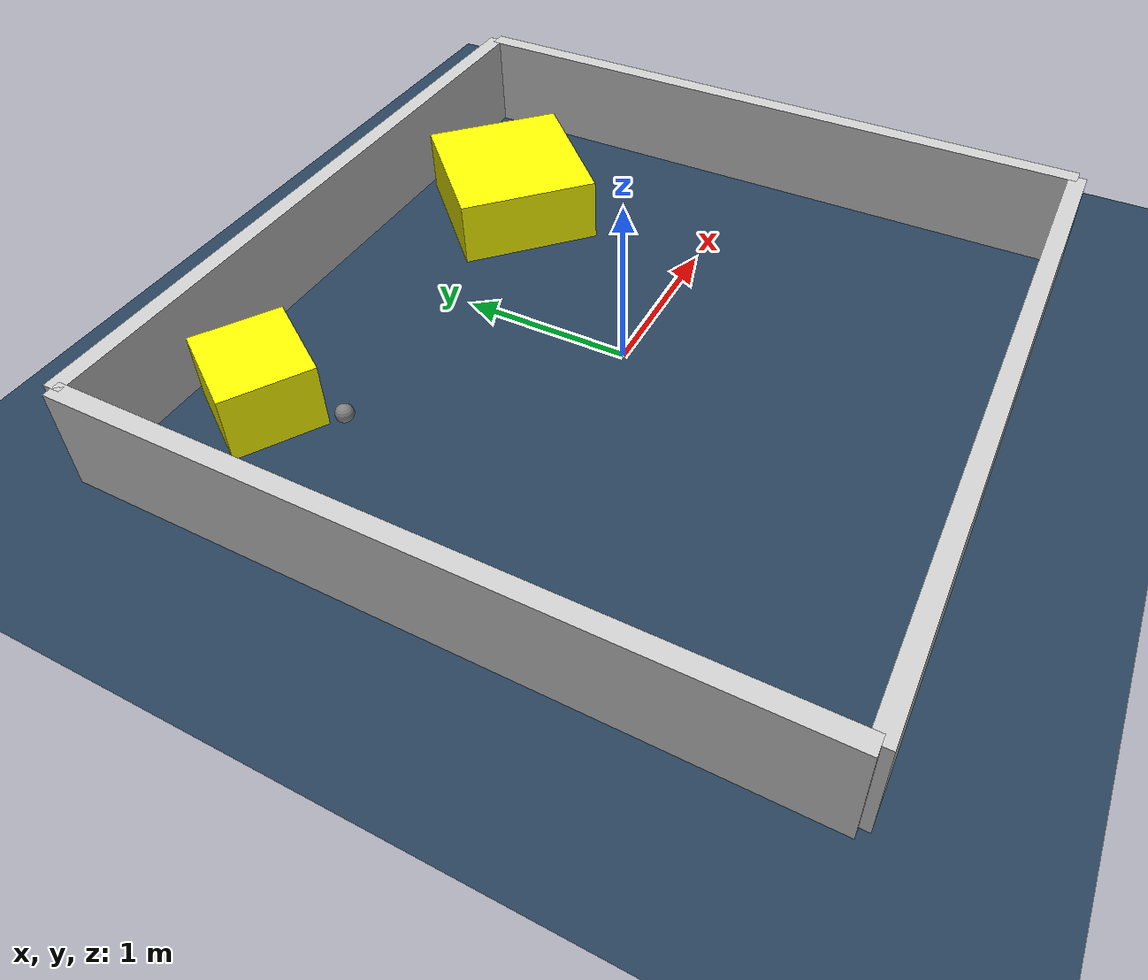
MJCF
<?xml version="1.0" ?>
<mujoco model="generated_environment">
  <option timestep="0.01" integrator="RK4" cone="elliptic"/>
  <default>
    <geom density="1"/>
  </default>
  <asset>
    <texture builtin="gradient" height="3072" rgb1="0.3 0.5 0.7" rgb2="0 0 0" type="skybox" width="512"/>
    <texture builtin="checker" height="300" mark="edge" markrgb="0.8 0.8 0.8" name="groundplane" rgb1="0.2 0.3 0.4" rgb2="0.1 0.2 0.3" type="2d" width="300"/>
    <material name="groundplane" reflectance="0.2" texrepeat="5 5" texture="groundplane" texuniform="true"/>
    <material name="robot" rgba="0.0 1.0 0.0 1"/>
  </asset>
  <worldbody>
    <light dir="0 0 -1" directional="true" pos="0 0 1.5"/>
    <geom condim="4" friction="1.0 0.005 0.001" material="groundplane" name="floor" size="0 0 0.05" type="plane"/>
    <body name="walls">
      <geom name="wall_1" condim="4" pos="-2.0 0.0 0.3" rgba="0.800000011920929 0.800000011920929 0.800000011920929 1.0" size="0.05 2.0 0.3" type="box"/>
      <geom name="wall_2" condim="4" pos="2.0 0.0 0.3" rgba="0.800000011920929 0.800000011920929 0.800000011920929 1.0" size="0.05 2.0 0.3" type="box"/>
      <geom name="wall_3" condim="4" pos="0.0 -2.0 0.3" rgba="0.800000011920929 0.800000011920929 0.800000011920929 1.0" size="2.0 0.05 0.3" type="box"/>
      <geom name="wall_4" condim="4" pos="0.0 2.0 0.3" rgba="0.800000011920929 0.800000011920929 0.800000011920929 1.0" size="2.0 0.05 0.3" type="box"/>
    </body>
    <body name="robot">
      <joint name="joint_x" type="slide" pos="0 0 0" axis="1 0 0"/>
      <joint name="joint_y" type="slide" pos="0 0 0" axis="0 1 0"/>
      <geom name="robot" type="sphere" pos="-1.2211630306257368 0.9713859449983162 0.2" size="0.05" mass="5." friction="1.0 0.005 0.0001" condim="4"/>
      <site name="sensor_ball"/>
    </body>
    <body name="obstacle_1_movable">
      <geom name="obstacle_1_movable" condim="4" pos="0.9510695436773067 1.2820353812274952 0.2" euler="0 0 315.7224667083405" friction="1.0 0.005 0.001" rgba="1 1 0 1" size="0.42161187767174013 0.4509935103994927 0.2" type="box" mass="0.1"/>
      <joint type="free"/>
    </body>
    <body name="obstacle_2_movable">
      <geom name="obstacle_2_movable" condim="4" pos="-1.233831151763523 1.5180211418009306 0.2" euler="0 0 147.1083213314905" friction="1.0 0.005 0.001" rgba="1 1 0 1" size="0.2561330880359631 0.2812506998760681 0.2" type="box" mass="0.1"/>
      <joint type="free"/>
    </body>
  </worldbody>
  <actuator>
    <motor name="actuator_x" joint="joint_x" gear="1" ctrlrange="-1 1"/>
    <motor name="actuator_y" joint="joint_y" gear="1" ctrlrange="-1 1"/>
  </actuator>
</mujoco>
